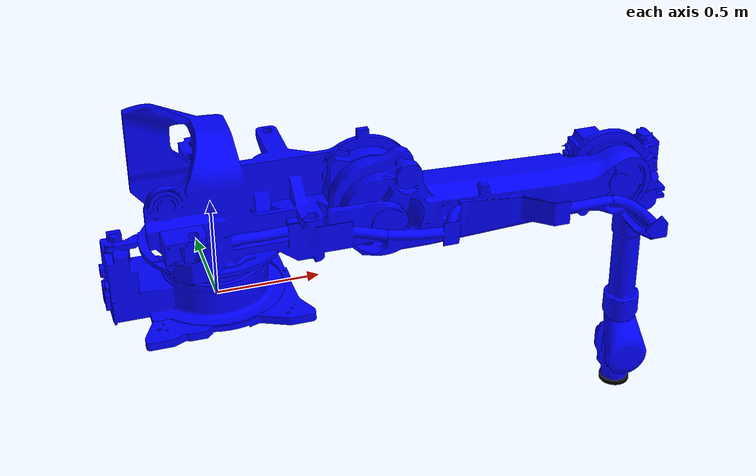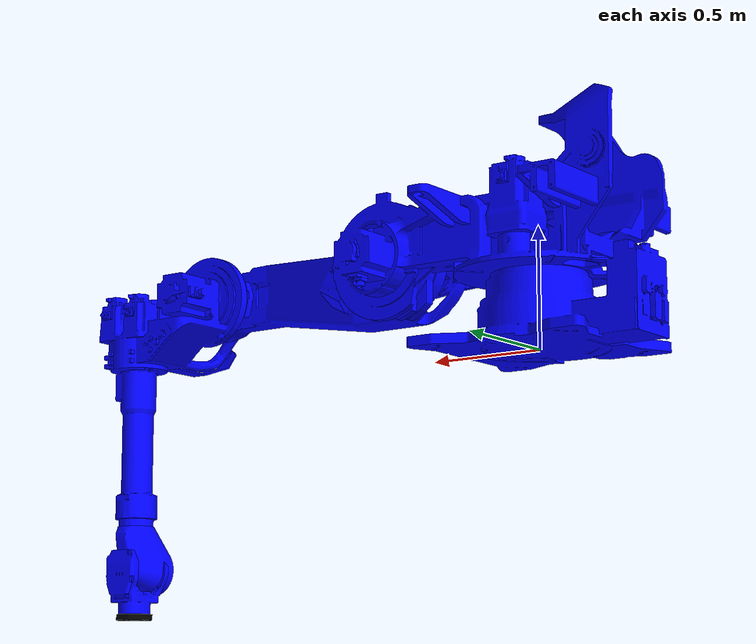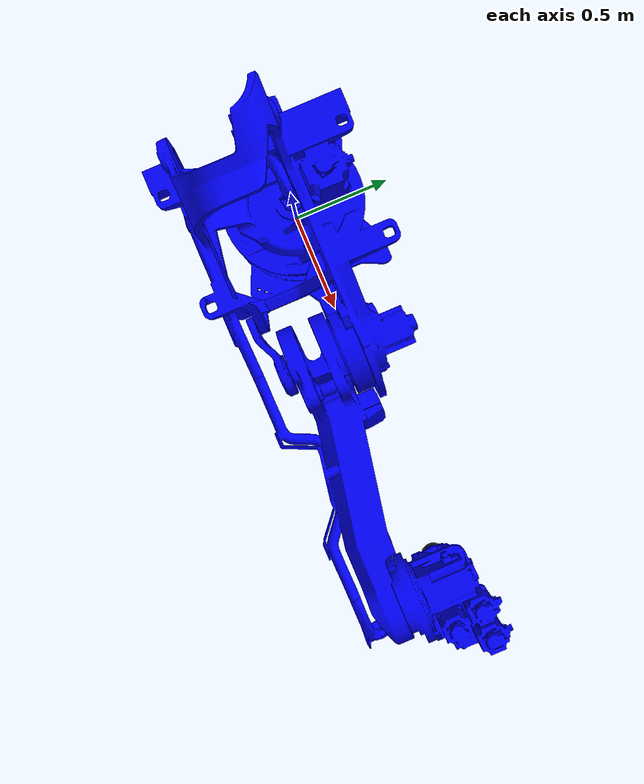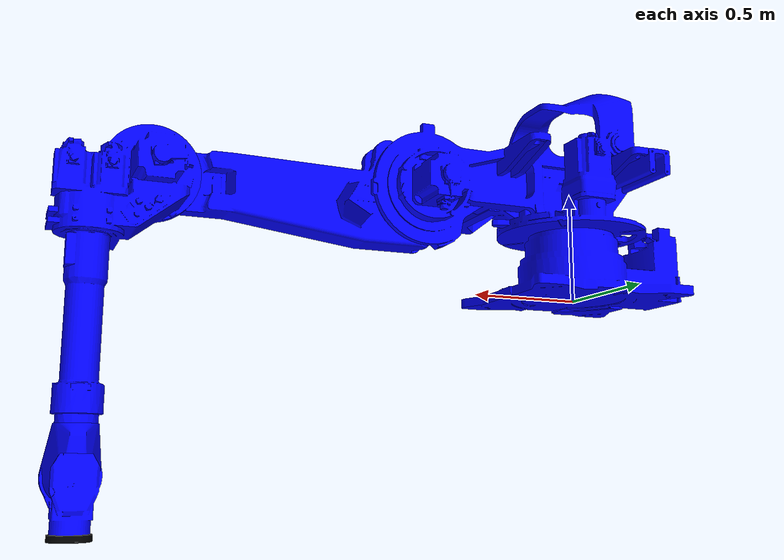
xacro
<?xml version="1.0" ?>
<robot name="motoman_es165rdii" xmlns:xacro="http://ros.org/wiki/xacro">
  <xacro:include filename="$(find motoman_es_support)/urdf/es165rdii_macro.xacro"/>
  <xacro:arg name="joint_velocities_file" default=""/>
  <xacro:motoman_es165rdii prefix="" joint_velocities_file="$(arg joint_velocities_file)"/>
</robot>

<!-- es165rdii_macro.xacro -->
<robot xmlns:xacro="http://ros.org/wiki/xacro">
  <xacro:macro name="motoman_es165rdii" params="prefix joint_velocities_file">
    <!-- link list -->
    <link name="${prefix}base_link">
      <visual>
        <origin xyz="0 0 0" rpy="0 0 0"/>
          <geometry>
            <mesh filename="package://motoman_es_support/meshes/es/visual/base_link.stl"/>
          </geometry>
          <material name="blue">
            <color rgba="0 0 1 1"/>
          </material>
      </visual>
      <collision>
        <geometry>
          <mesh filename="package://motoman_es_support/meshes/es/collision/base_link.stl"/>
        </geometry>
        <material name="yellow">
          <color rgba="0 1 1 1"/>
        </material>
      </collision>
    </link>
    <link name="${prefix}link_s">
      <visual>
        <origin xyz="0 0 0" rpy="0 0 0"/>
        <geometry>
          <mesh filename="package://motoman_es_support/meshes/es/visual/link_s.stl"/>
        </geometry>
        <material name="blue"/>
      </visual>
      <collision>
        <origin xyz="0 0 0" rpy="0 0 0"/>
        <geometry>
          <mesh filename="package://motoman_es_support/meshes/es/collision/link_s.stl"/>
        </geometry>
        <material name="yellow"/>
      </collision>
    </link>
    <link name="${prefix}link_l">
      <visual>
        <origin xyz="0 0 0" rpy="0 0 0"/>
        <geometry>
          <mesh filename="package://motoman_es_support/meshes/es/visual/link_l.stl"/>
        </geometry>
        <material name="blue"/>
      </visual>
      <collision>
        <origin xyz="0 0 0" rpy="0 0 0"/>
        <geometry>
          <mesh filename="package://motoman_es_support/meshes/es/collision/link_l.stl"/>
        </geometry>
        <material name="yellow"/>
      </collision>
    </link>
    <link name="${prefix}link_u">
      <visual>
        <origin xyz="0 0 0" rpy="0 0 0"/>
        <geometry>
          <mesh filename="package://motoman_es_support/meshes/es/visual/link_u.stl"/>
        </geometry>
        <material name="blue"/>
      </visual>
      <collision>
        <origin xyz="0 0 0" rpy="0 0 0"/>
        <geometry>
          <mesh filename="package://motoman_es_support/meshes/es/collision/link_u.stl"/>
        </geometry>
        <material name="yellow"/>
      </collision>
    </link>
    <link name="${prefix}link_r">
      <visual>
        <origin xyz="0 0 0" rpy="0 0 0"/>
      <geometry>
        <mesh filename="package://motoman_es_support/meshes/es165rdii/visual/link_r.stl"/>
      </geometry>
      <material name="blue"/>
      </visual>
      <collision>
        <origin xyz="0 0 0" rpy="0 0 0"/>
        <geometry>
          <mesh filename="package://motoman_es_support/meshes/es165rdii/collision/link_r.stl"/>
        </geometry>
        <material name="yellow"/>
      </collision>
    </link>
    <link name="${prefix}link_b">
      <visual>
        <origin xyz="0 0 0" rpy="0 0 0"/>
        <geometry>
          <mesh filename="package://motoman_es_support/meshes/es/visual/link_b.stl"/>
        </geometry>
        <material name="blue"/>
      </visual>
      <collision>
        <origin xyz="0 0 0" rpy="0 0 0"/>
        <geometry>
          <mesh filename="package://motoman_es_support/meshes/es/collision/link_b.stl"/>
        </geometry>
        <material name="yellow"/>
      </collision>
    </link>
    <link name="${prefix}link_t">
      <visual>
        <origin xyz="0 0 0" rpy="0 0 0"/>
          <geometry>
            <mesh filename="package://motoman_es_support/meshes/es/visual/link_t.stl"/>
          </geometry>
          <material name="black">
            <color rgba="0 0 0 1"/>
          </material>
      </visual>
      <collision>
        <origin xyz="0 0 0" rpy="0 0 0"/>
        <geometry>
          <mesh filename="package://motoman_es_support/meshes/es/collision/link_t.stl"/>
        </geometry>
        <material name="black"/>
      </collision>
    </link>
    <link name="${prefix}tool0"/>

    <!-- end of link list -->

    <!-- joint list -->
    <xacro:property name="velocities" value="${load_yaml(joint_velocities_file)}" />

    <joint name="${prefix}joint_1_s" type="revolute">
      <origin xyz="0 0 0.450" rpy="0 0 0"/>
      <parent link="${prefix}base_link"/>
      <child link="${prefix}link_s"/>
      <axis xyz="0 0 1"/>
      <limit lower="${radians(-180)}" upper="${radians(180)}" effort="0" velocity="${radians(velocities['joint_1_s'])}"/>
    </joint>
    <joint name="${prefix}joint_2_l" type="revolute">
      <origin xyz="0.740 0 0" rpy="0 0 0"/>
      <parent link="${prefix}link_s"/>
      <child link="${prefix}link_l"/>
      <axis xyz="0 1 0"/>
      <limit lower="${radians(-130)}" upper="${radians(80)}" effort="0" velocity="${radians(velocities['joint_2_l'])}"/>
    </joint>
    <joint name="${prefix}joint_3_u" type="revolute">
      <origin xyz="1.150 0 0" rpy="0 0 0"/>
      <parent link="${prefix}link_l"/>
      <child link="${prefix}link_u"/>
      <axis xyz="0 -1 0"/>
      <limit lower="${radians(-112)}" upper="${radians(208)}" effort="0" velocity="${radians(velocities['joint_3_u'])}"/>
    </joint>
    <joint name="${prefix}joint_4_r" type="revolute">
      <origin xyz="0.250 0 0" rpy="0 0 0"/>
      <parent link="${prefix}link_u"/>
      <child link="${prefix}link_r"/>
      <axis xyz="0 0 1"/>
      <limit lower="${radians(-360)}" upper="${radians(360)}" effort="0" velocity="${radians(velocities['joint_4_r'])}"/>
    </joint>
    <joint name="${prefix}joint_5_b" type="revolute">
      <origin xyz="0 0 -1.225" rpy="0 0 0"/>
      <parent link="${prefix}link_r"/>
      <child link="${prefix}link_b"/>
      <axis xyz="0 -1 0"/>
      <limit lower="${radians(-130)}" upper="${radians(130)}" effort="0" velocity="${radians(velocities['joint_5_b'])}"/>
    </joint>
    <joint name="${prefix}joint_6_t" type="revolute">
      <origin xyz="0 0 -0.225" rpy="0 0 0"/>
      <parent link="${prefix}link_b"/>
      <child link="${prefix}link_t"/>
      <axis xyz="0 0 1"/>
      <limit lower="${radians(-360)}" upper="${radians(360)}" effort="0" velocity="${radians(velocities['joint_6_t'])}"/>
    </joint>
    <joint name="${prefix}joint_t-tool0" type="fixed">
      <origin xyz="0 0 0" rpy="0 ${pi} 0"/>
      <parent link="${prefix}link_t"/>
      <child link="${prefix}tool0"/>
    </joint>

    <!-- end of joint list -->

    <!-- ROS base_link to Robot Manufacturer World Coordinates transform -->
    <link name="${prefix}base" />
    <joint name="${prefix}base_link-base" type="fixed">
      <origin xyz="0 0 0.450" rpy="0 0 0"/>
      <parent link="${prefix}base_link"/>
      <child link="${prefix}base"/>
    </joint>
  </xacro:macro>
</robot>
